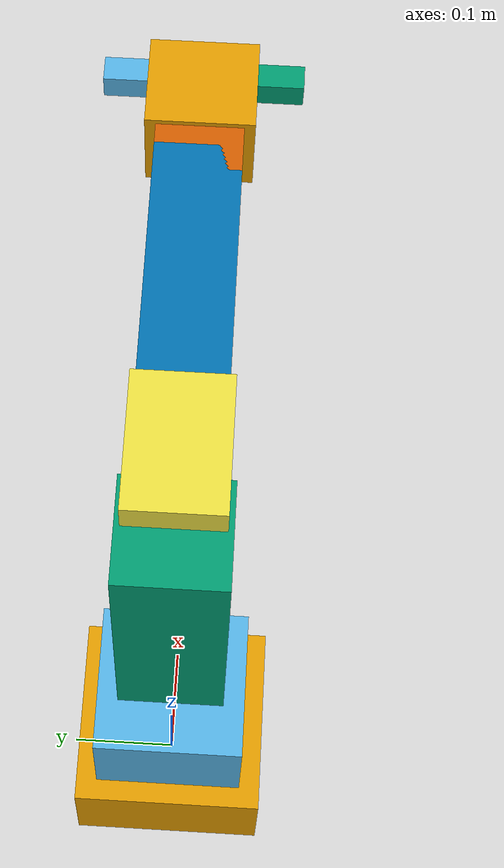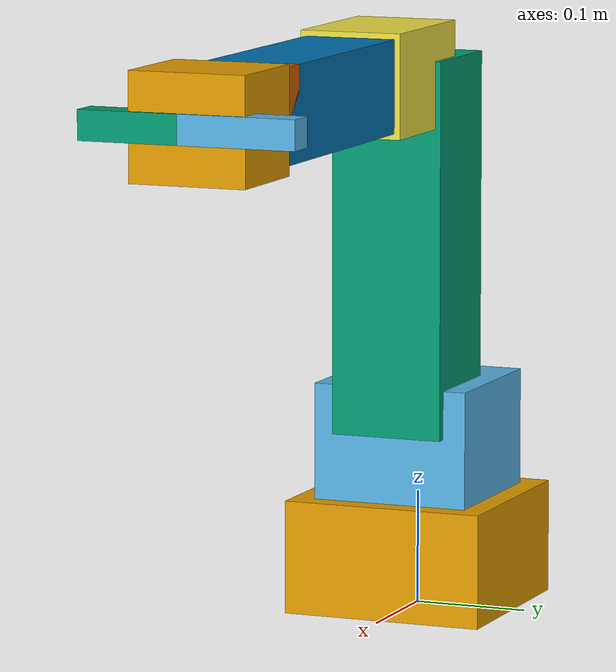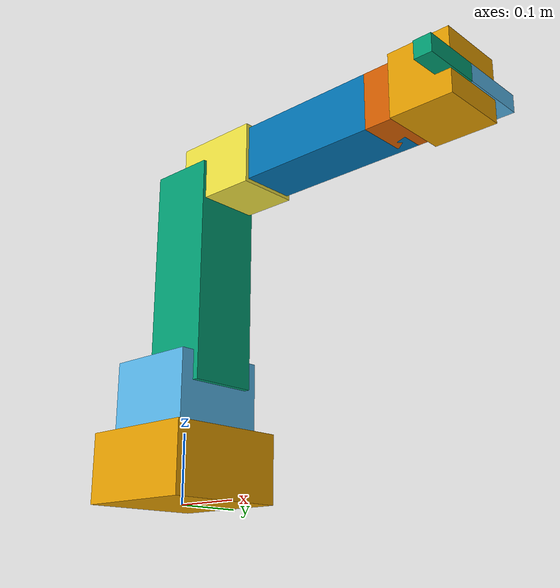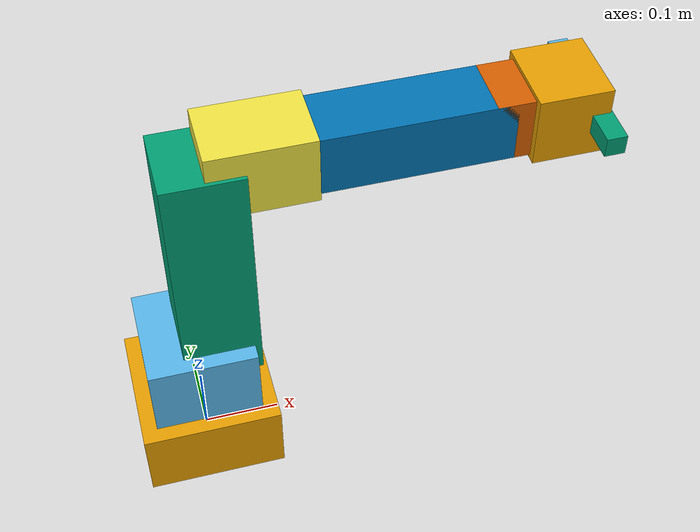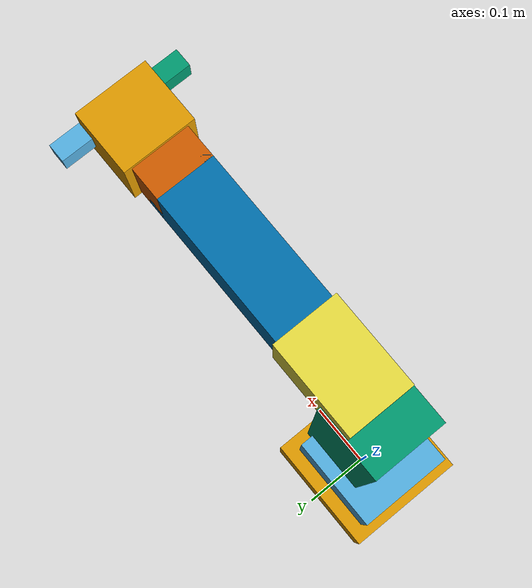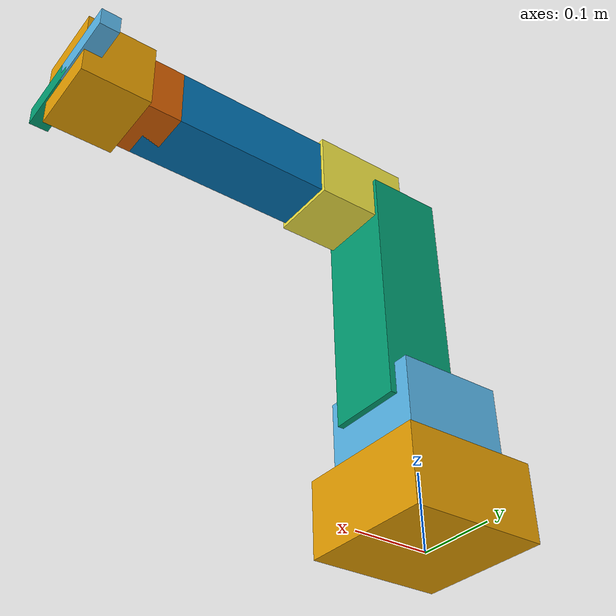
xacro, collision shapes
<?xml version="1.0"?>
<robot xmlns:xacro="http://www.ros.org/wiki/xacro" name="myarm_m750">

  <xacro:arg name="model_variant" default="full"/>
  <xacro:property name="variant" value="$(arg model_variant)"/>

  <xacro:macro
    name="model_link"
    params="name mesh mesh_xyz mesh_rpy primitive_xyz primitive_rpy primitive_size">
    <link name="${name}">
      <xacro:unless value="${variant == 'kinematic'}">
        <visual name="${name}_visual">
          <xacro:if value="${variant == 'full'}">
            <origin xyz="${mesh_xyz}" rpy="${mesh_rpy}"/>
            <geometry>
              <mesh
                filename="package://myarm_m750_description/meshes/visual/${mesh}"
                scale="1 1 1"/>
            </geometry>
          </xacro:if>
          <xacro:unless value="${variant == 'full'}">
            <origin xyz="${primitive_xyz}" rpy="${primitive_rpy}"/>
            <geometry>
              <box size="${primitive_size}"/>
            </geometry>
          </xacro:unless>
        </visual>
        <collision name="${name}_collision">
          <origin xyz="${primitive_xyz}" rpy="${primitive_rpy}"/>
          <geometry>
            <box size="${primitive_size}"/>
          </geometry>
        </collision>
      </xacro:unless>
    </link>
  </xacro:macro>

  <!-- Visual mesh transforms are preserved from the supplied v3.2 URDF.
       Primitive collision is approximate/provisional pending physical review. -->
  <xacro:model_link
    name="base_link" mesh="base_link.dae"
    mesh_xyz="0 0 0" mesh_rpy="0 0 0"
    primitive_xyz="0 0 0.05" primitive_rpy="0 0 0"
    primitive_size="0.18 0.18 0.10"/>
  <xacro:model_link
    name="shoulder_link" mesh="shoulder_link.dae"
    mesh_xyz="0 0 0" mesh_rpy="0 0 0"
    primitive_xyz="0 0 0.035" primitive_rpy="0 0 0"
    primitive_size="0.14 0.14 0.14"/>
  <xacro:model_link
    name="upper_arm_link" mesh="upper_arm_link.dae"
    mesh_xyz="0 0 0" mesh_rpy="1.570796326794897 -1.570796326794897 0"
    primitive_xyz="0.0285 0 0.1515" primitive_rpy="0 0 0"
    primitive_size="0.10 0.10 0.33"/>
  <xacro:model_link
    name="lower_arm_link" mesh="lower_arm_link.dae"
    mesh_xyz="0 0 0" mesh_rpy="-1.570796326794897 0 0"
    primitive_xyz="0.0394 0 0" primitive_rpy="0 0 0"
    primitive_size="0.13 0.09 0.09"/>
  <xacro:model_link
    name="forearm_link" mesh="forearm_link.dae"
    mesh_xyz="-0.009 0 0" mesh_rpy="-3.141592653589793 -1.570796326794897 0"
    primitive_xyz="0.124555 0 0" primitive_rpy="0 0 0"
    primitive_size="0.27 0.08 0.08"/>
  <xacro:model_link
    name="wrist_link" mesh="wrist_link.dae"
    mesh_xyz="0 0 0" mesh_rpy="-1.570796326794897 0 0"
    primitive_xyz="0.0395 0 0" primitive_rpy="0 0 0"
    primitive_size="0.11 0.08 0.08"/>
  <link name="flange_link"/>
  <link name="tool0"/>
  <xacro:model_link
    name="gripper_base_link" mesh="gripper_base_link.dae"
    mesh_xyz="0 0 -0.0427" mesh_rpy="0 0 0"
    primitive_xyz="0 0 -0.035" primitive_rpy="0 0 0"
    primitive_size="0.09 0.10 0.09"/>
  <xacro:model_link
    name="left_gripper_link" mesh="left_gripper_link.dae"
    mesh_xyz="0 -0.0079 0" mesh_rpy="0 3.141592653589793 -1.570796326794897"
    primitive_xyz="0 0 0.035" primitive_rpy="0 0 0"
    primitive_size="0.025 0.025 0.10"/>
  <xacro:model_link
    name="right_gripper_link" mesh="right_gripper_link.dae"
    mesh_xyz="0 -0.0079 0" mesh_rpy="0 3.141592653589793 -1.570796326794897"
    primitive_xyz="0 0 -0.035" primitive_rpy="0 0 0"
    primitive_size="0.025 0.025 0.10"/>

  <joint name="shoulder_pan_joint" type="revolute">
    <parent link="base_link"/>
    <child link="shoulder_link"/>
    <origin xyz="0 0 0.097900" rpy="0 0 0"/>
    <axis xyz="0 0 1"/>
    <limit lower="-2.879793265790644" upper="2.879793265790644" velocity="1.0" effort="1.0"/>
    <dynamics damping="0.0" friction="0.0"/>
  </joint>

  <joint name="shoulder_lift_joint" type="revolute">
    <parent link="shoulder_link"/>
    <child link="upper_arm_link"/>
    <origin xyz="0 0 0.076000" rpy="0 0 0"/>
    <axis xyz="0 1 0"/>
    <limit lower="-1.570796326794897" upper="1.570796326794897" velocity="1.0" effort="1.0"/>
    <dynamics damping="0.0" friction="0.0"/>
  </joint>

  <joint name="elbow_flex_joint" type="revolute">
    <parent link="upper_arm_link"/>
    <child link="lower_arm_link"/>
    <origin xyz="0.057000 0 0.303000" rpy="0 0 0"/>
    <axis xyz="0 1 0"/>
    <limit lower="-1.570796326794897" upper="1.570796326794897" velocity="1.0" effort="1.0"/>
    <dynamics damping="0.0" friction="0.0"/>
  </joint>

  <joint name="forearm_roll_joint" type="revolute">
    <parent link="lower_arm_link"/>
    <child link="forearm_link"/>
    <origin xyz="0.078800 0 0" rpy="0 0 0"/>
    <axis xyz="1 0 0"/>
    <limit lower="-2.792526803190927" upper="2.792526803190927" velocity="1.0" effort="1.0"/>
    <dynamics damping="0.0" friction="0.0"/>
  </joint>

  <joint name="wrist_flex_joint" type="revolute">
    <parent link="forearm_link"/>
    <child link="wrist_link"/>
    <origin xyz="0.249110 0 0" rpy="0 0 0"/>
    <axis xyz="0 1 0"/>
    <limit lower="-1.570796326794897" upper="2.0943951023931953" velocity="1.0" effort="1.0"/>
    <dynamics damping="0.0" friction="0.0"/>
  </joint>

  <joint name="wrist_roll_joint" type="revolute">
    <parent link="wrist_link"/>
    <child link="flange_link"/>
    <origin xyz="0.079000 0 0" rpy="0 0 0"/>
    <axis xyz="1 0 0"/>
    <limit lower="-3.141592653589793" upper="3.141592653589793" velocity="1.0" effort="1.0"/>
    <dynamics damping="0.0" friction="0.0"/>
  </joint>

  <!-- tool0 is +118 mm along flange +X with a -pi/2 pitch. -->
  <joint name="flange_to_tool0_joint" type="fixed">
    <parent link="flange_link"/>
    <child link="tool0"/>
    <origin xyz="0.118000 0 0" rpy="0 -1.570796326794897 0"/>
  </joint>

  <joint name="gripper_mount_joint" type="fixed">
    <parent link="flange_link"/>
    <child link="gripper_base_link"/>
    <origin xyz="0.031000 0 0" rpy="0 1.570796326794897 0"/>
  </joint>

  <joint name="left_gripper_joint" type="prismatic">
    <parent link="gripper_base_link"/>
    <child link="left_gripper_link"/>
    <origin xyz="0 0.008000 0" rpy="1.570796326794897 0 -3.141592653589793"/>
    <axis xyz="0 0 1"/>
    <limit lower="0.0" upper="0.0345" velocity="0.05" effort="20.0"/>
  </joint>

  <joint name="right_gripper_joint" type="prismatic">
    <parent link="gripper_base_link"/>
    <child link="right_gripper_link"/>
    <origin xyz="0 -0.008000 0" rpy="1.570796326794897 0 -3.141592653589793"/>
    <axis xyz="0 0 -1"/>
    <limit lower="0.0" upper="0.0345" velocity="0.05" effort="20.0"/>
    <mimic joint="left_gripper_joint" multiplier="1.0" offset="0.0"/>
  </joint>
</robot>
